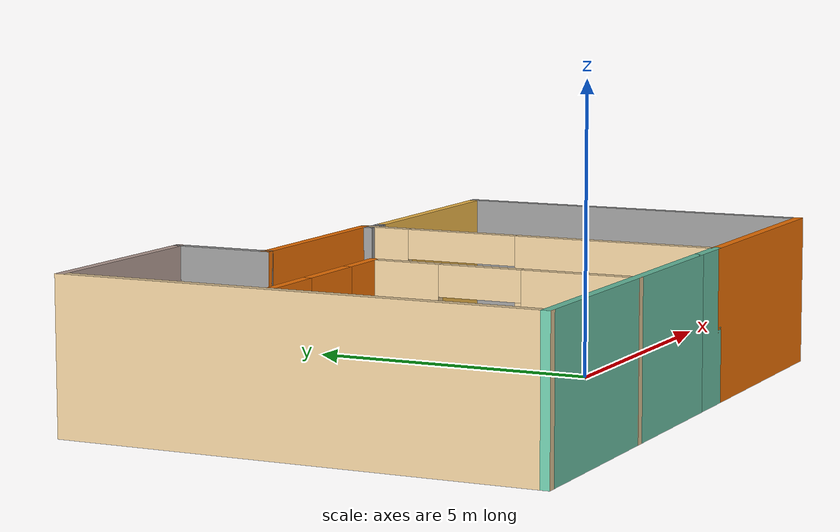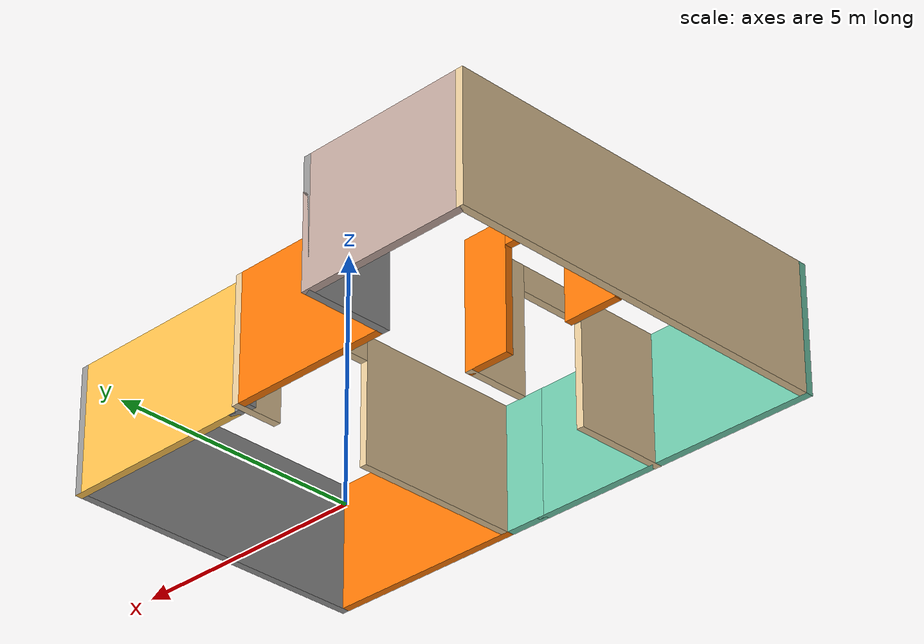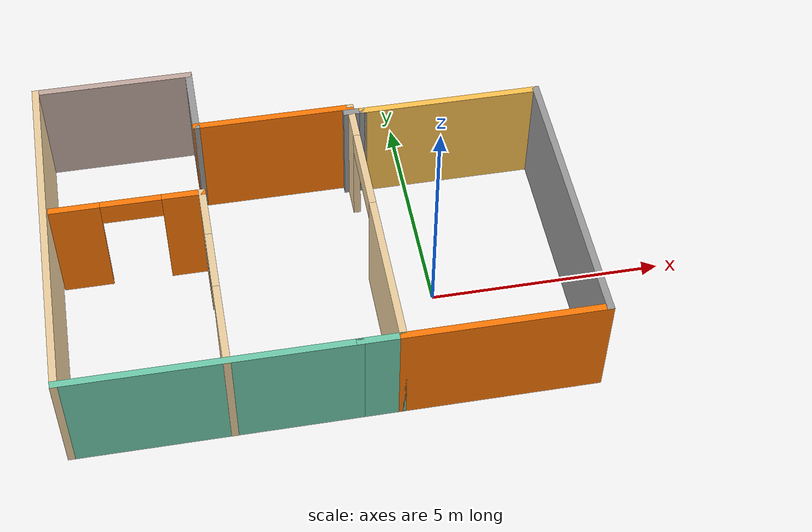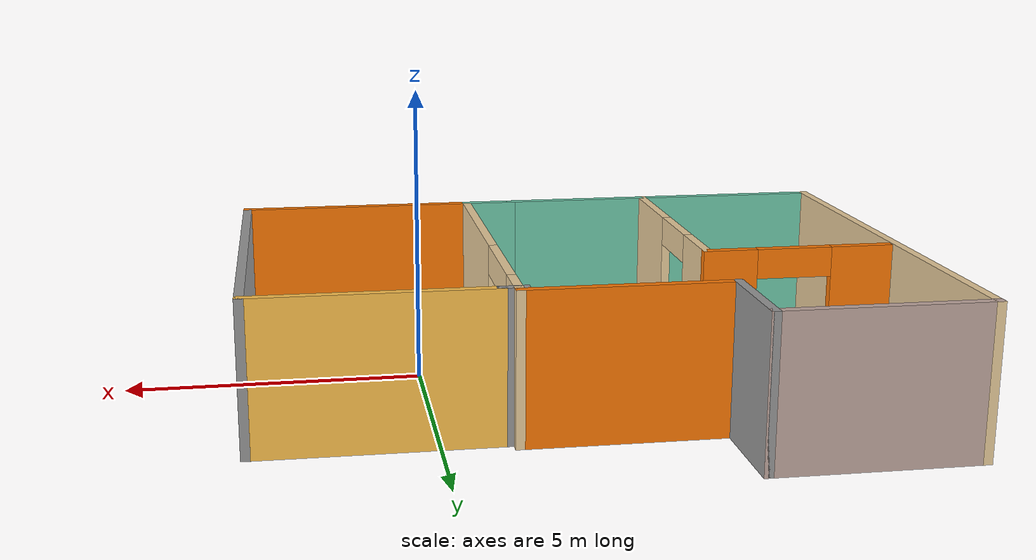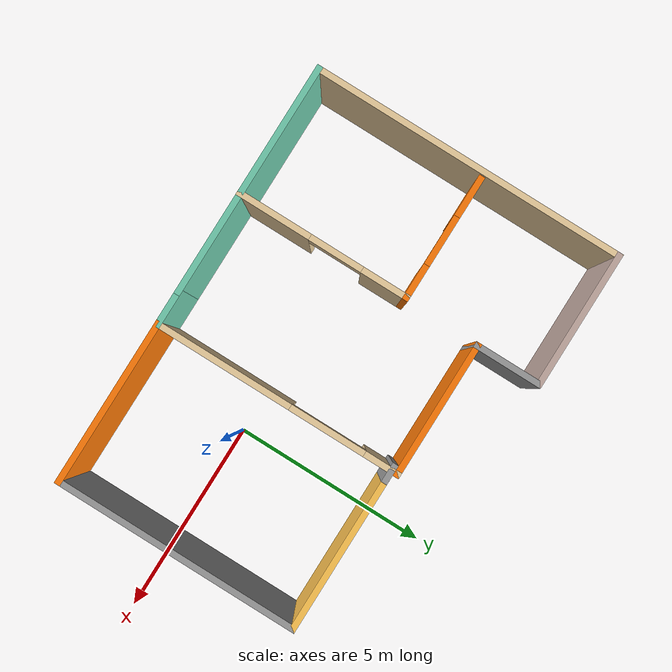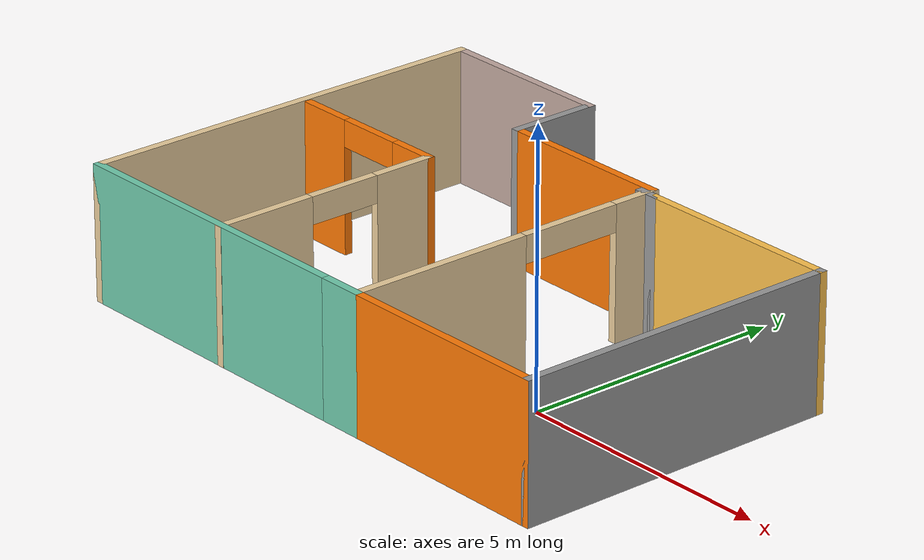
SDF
<?xml version='1.0'?>
<sdf version='1.6'>
  <model name='building1'>
    <pose frame=''>-2.48886 1.20939 0 0 -0 0</pose>
    <link name='Wall_1'>
      <collision name='Wall_1_Collision'>
        <geometry>
          <box>
            <size>6 0.15 2.5</size>
          </box>
        </geometry>
        <pose frame=''>0 0 1.25 0 -0 0</pose>
      </collision>
      <visual name='Wall_1_Visual'>
        <pose frame=''>0 0 1.25 0 -0 0</pose>
        <geometry>
          <box>
            <size>6 0.15 2.5</size>
          </box>
        </geometry>
        <material>
          <script>
            <uri>file://media/materials/scripts/gazebo.material</uri>
            <name>Gazebo/Grey</name>
          </script>
          <ambient>0.435294 0.796078 0.67451 1</ambient>
        </material>
        <meta>
          <layer>0</layer>
        </meta>
      </visual>
      <pose frame=''>-2.475 -3.92334 0 0 -0 3.14159</pose>
    </link>
    <link name='Wall_10'>
      <collision name='Wall_10_Collision'>
        <geometry>
          <box>
            <size>3.5 0.15 2.5</size>
          </box>
        </geometry>
        <pose frame=''>0 0 1.25 0 -0 0</pose>
      </collision>
      <visual name='Wall_10_Visual'>
        <pose frame=''>0 0 1.25 0 -0 0</pose>
        <geometry>
          <box>
            <size>3.5 0.15 2.5</size>
          </box>
        </geometry>
        <material>
          <script>
            <uri>file://media/materials/scripts/gazebo.material</uri>
            <name>Gazebo/Grey</name>
          </script>
          <ambient>0.996078 0.47451 0.0196078 1</ambient>
        </material>
        <meta>
          <layer>0</layer>
        </meta>
      </visual>
      <pose frame=''>-0.375 2.32666 0 0 -0 0</pose>
    </link>
    <link name='Wall_11'>
      <pose frame=''>1.3 -0.723336 0 0 0 -1.5708</pose>
      <visual name='Wall_11_Visual_0'>
        <pose frame=''>-2.65935 0 1.25 0 -0 0</pose>
        <geometry>
          <box>
            <size>0.931308 0.15 2.5</size>
          </box>
        </geometry>
        <material>
          <script>
            <uri>file://media/materials/scripts/gazebo.material</uri>
            <name>Gazebo/Grey</name>
          </script>
          <ambient>0.921569 0.807843 0.615686 1</ambient>
        </material>
        <meta>
          <layer>0</layer>
        </meta>
      </visual>
      <collision name='Wall_11_Collision_0'>
        <geometry>
          <box>
            <size>0.931308 0.15 2.5</size>
          </box>
        </geometry>
        <pose frame=''>-2.65935 0 1.25 0 -0 0</pose>
      </collision>
      <visual name='Wall_11_Visual_1'>
        <pose frame=''>1.43569 0 1.25 0 -0 0</pose>
        <geometry>
          <box>
            <size>3.37862 0.15 2.5</size>
          </box>
        </geometry>
        <material>
          <script>
            <uri>file://media/materials/scripts/gazebo.material</uri>
            <name>Gazebo/Grey</name>
          </script>
          <ambient>0.921569 0.807843 0.615686 1</ambient>
        </material>
        <meta>
          <layer>0</layer>
        </meta>
      </visual>
      <collision name='Wall_11_Collision_1'>
        <geometry>
          <box>
            <size>3.37862 0.15 2.5</size>
          </box>
        </geometry>
        <pose frame=''>1.43569 0 1.25 0 -0 0</pose>
      </collision>
      <visual name='Wall_11_Visual_2'>
        <pose frame=''>-1.22366 0 2.25 0 -0 0</pose>
        <geometry>
          <box>
            <size>1.94007 0.15 0.5</size>
          </box>
        </geometry>
        <material>
          <script>
            <uri>file://media/materials/scripts/gazebo.material</uri>
            <name>Gazebo/Grey</name>
          </script>
          <ambient>0.921569 0.807843 0.615686 1</ambient>
        </material>
        <meta>
          <layer>0</layer>
        </meta>
      </visual>
      <collision name='Wall_11_Collision_2'>
        <geometry>
          <box>
            <size>1.94007 0.15 0.5</size>
          </box>
        </geometry>
        <pose frame=''>-1.22366 0 2.25 0 -0 0</pose>
      </collision>
    </link>
    <link name='Wall_13'>
      <collision name='Wall_13_Collision'>
        <geometry>
          <box>
            <size>1 0.15 2.5</size>
          </box>
        </geometry>
        <pose frame=''>0 0 1.25 0 -0 0</pose>
      </collision>
      <visual name='Wall_13_Visual'>
        <pose frame=''>0 0 1.25 0 -0 0</pose>
        <geometry>
          <box>
            <size>1 0.15 2.5</size>
          </box>
        </geometry>
        <material>
          <script>
            <uri>file://media/materials/scripts/gazebo.material</uri>
            <name>Gazebo/Grey</name>
          </script>
          <ambient>0.435294 0.796078 0.67451 1</ambient>
        </material>
        <meta>
          <layer>0</layer>
        </meta>
      </visual>
      <pose frame=''>0.875 -3.92334 0 0 -0 0</pose>
    </link>
    <link name='Wall_15'>
      <collision name='Wall_15_Collision'>
        <geometry>
          <box>
            <size>4.25 0.15 2.5</size>
          </box>
        </geometry>
        <pose frame=''>0 0 1.25 0 -0 0</pose>
      </collision>
      <visual name='Wall_15_Visual'>
        <pose frame=''>0 0 1.25 0 -0 0</pose>
        <geometry>
          <box>
            <size>4.25 0.15 2.5</size>
          </box>
        </geometry>
        <material>
          <script>
            <uri>file://media/materials/scripts/gazebo.material</uri>
            <name>Gazebo/Grey</name>
          </script>
          <ambient>0.996078 0.47451 0.0196078 1</ambient>
        </material>
        <meta>
          <layer>0</layer>
        </meta>
      </visual>
      <pose frame=''>3.35 -3.92334 0 0 -0 0</pose>
    </link>
    <link name='Wall_16'>
      <collision name='Wall_16_Collision'>
        <geometry>
          <box>
            <size>6.25 0.15 2.5</size>
          </box>
        </geometry>
        <pose frame=''>0 0 1.25 0 -0 0</pose>
      </collision>
      <visual name='Wall_16_Visual'>
        <pose frame=''>0 0 1.25 0 -0 0</pose>
        <geometry>
          <box>
            <size>6.25 0.15 2.5</size>
          </box>
        </geometry>
        <material>
          <script>
            <uri>file://media/materials/scripts/gazebo.material</uri>
            <name>Gazebo/Grey</name>
          </script>
          <ambient>1 1 1 1</ambient>
        </material>
        <meta>
          <layer>0</layer>
        </meta>
      </visual>
      <pose frame=''>5.4 -0.873336 0 0 -0 1.5708</pose>
    </link>
    <link name='Wall_17'>
      <collision name='Wall_17_Collision'>
        <geometry>
          <box>
            <size>4 0.15 2.5</size>
          </box>
        </geometry>
        <pose frame=''>0 0 1.25 0 -0 0</pose>
      </collision>
      <visual name='Wall_17_Visual'>
        <pose frame=''>0 0 1.25 0 -0 0</pose>
        <geometry>
          <box>
            <size>4 0.15 2.5</size>
          </box>
        </geometry>
        <material>
          <script>
            <uri>file://media/materials/scripts/gazebo.material</uri>
            <name>Gazebo/Grey</name>
          </script>
          <ambient>1 0.764706 0.305882 1</ambient>
        </material>
        <meta>
          <layer>0</layer>
        </meta>
      </visual>
      <pose frame=''>3.475 2.17666 0 0 -0 3.14159</pose>
    </link>
    <link name='Wall_18'>
      <collision name='Wall_18_Collision'>
        <geometry>
          <box>
            <size>0.15 0.15 2.5</size>
          </box>
        </geometry>
        <pose frame=''>0 0 1.25 0 -0 0</pose>
      </collision>
      <visual name='Wall_18_Visual'>
        <pose frame=''>0 0 1.25 0 -0 0</pose>
        <geometry>
          <box>
            <size>0.15 0.15 2.5</size>
          </box>
        </geometry>
        <material>
          <script>
            <uri>file://media/materials/scripts/gazebo.material</uri>
            <name>Gazebo/Grey</name>
          </script>
          <ambient>1 1 1 1</ambient>
        </material>
        <meta>
          <layer>0</layer>
        </meta>
      </visual>
      <pose frame=''>1.55 2.17666 0 0 -0 0</pose>
    </link>
    <link name='Wall_19'>
      <collision name='Wall_19_Collision'>
        <geometry>
          <box>
            <size>0.5 0.15 2.5</size>
          </box>
        </geometry>
        <pose frame=''>0 0 1.25 0 -0 0</pose>
      </collision>
      <visual name='Wall_19_Visual'>
        <pose frame=''>0 0 1.25 0 -0 0</pose>
        <geometry>
          <box>
            <size>0.5 0.15 2.5</size>
          </box>
        </geometry>
        <material>
          <script>
            <uri>file://media/materials/scripts/gazebo.material</uri>
            <name>Gazebo/Grey</name>
          </script>
          <ambient>1 1 1 1</ambient>
        </material>
        <meta>
          <layer>0</layer>
        </meta>
      </visual>
      <pose frame=''>1.375 2.17666 0 0 -0 3.14159</pose>
    </link>
    <link name='Wall_3'>
      <collision name='Wall_3_Collision'>
        <geometry>
          <box>
            <size>8 0.15 2.5</size>
          </box>
        </geometry>
        <pose frame=''>0 0 1.25 0 -0 0</pose>
      </collision>
      <visual name='Wall_3_Visual'>
        <pose frame=''>0 0 1.25 0 -0 0</pose>
        <geometry>
          <box>
            <size>8 0.15 2.5</size>
          </box>
        </geometry>
        <material>
          <script>
            <uri>file://media/materials/scripts/gazebo.material</uri>
            <name>Gazebo/Grey</name>
          </script>
          <ambient>0.921569 0.807843 0.615686 1</ambient>
        </material>
        <meta>
          <layer>0</layer>
        </meta>
      </visual>
      <pose frame=''>-5.4 0.001664 0 0 -0 1.5708</pose>
    </link>
    <link name='Wall_5'>
      <pose frame=''>-2.12389 -1.75167 0 0 -0 1.5708</pose>
      <visual name='Wall_5_Visual_0'>
        <pose frame=''>-1.29797 0 1.25 0 -0 0</pose>
        <geometry>
          <box>
            <size>1.90406 0.15 2.5</size>
          </box>
        </geometry>
        <material>
          <script>
            <uri>file://media/materials/scripts/gazebo.material</uri>
            <name>Gazebo/Grey</name>
          </script>
          <ambient>0.921569 0.807843 0.615686 1</ambient>
        </material>
        <meta>
          <layer>0</layer>
        </meta>
      </visual>
      <collision name='Wall_5_Collision_0'>
        <geometry>
          <box>
            <size>1.90406 0.15 2.5</size>
          </box>
        </geometry>
        <pose frame=''>-1.29797 0 1.25 0 -0 0</pose>
      </collision>
      <visual name='Wall_5_Visual_1'>
        <pose frame=''>1.63333 0 1.25 0 -0 0</pose>
        <geometry>
          <box>
            <size>1.23333 0.15 2.5</size>
          </box>
        </geometry>
        <material>
          <script>
            <uri>file://media/materials/scripts/gazebo.material</uri>
            <name>Gazebo/Grey</name>
          </script>
          <ambient>0.921569 0.807843 0.615686 1</ambient>
        </material>
        <meta>
          <layer>0</layer>
        </meta>
      </visual>
      <collision name='Wall_5_Collision_1'>
        <geometry>
          <box>
            <size>1.23333 0.15 2.5</size>
          </box>
        </geometry>
        <pose frame=''>1.63333 0 1.25 0 -0 0</pose>
      </collision>
      <visual name='Wall_5_Visual_2'>
        <pose frame=''>0.335363 0 2.25 0 -0 0</pose>
        <geometry>
          <box>
            <size>1.36261 0.15 0.5</size>
          </box>
        </geometry>
        <material>
          <script>
            <uri>file://media/materials/scripts/gazebo.material</uri>
            <name>Gazebo/Grey</name>
          </script>
          <ambient>0.921569 0.807843 0.615686 1</ambient>
        </material>
        <meta>
          <layer>0</layer>
        </meta>
      </visual>
      <collision name='Wall_5_Collision_2'>
        <geometry>
          <box>
            <size>1.36261 0.15 0.5</size>
          </box>
        </geometry>
        <pose frame=''>0.335363 0 2.25 0 -0 0</pose>
      </collision>
    </link>
    <link name='Wall_6'>
      <pose frame=''>-3.67389 0.423335 0 0 -0 3.14159</pose>
      <visual name='Wall_6_Visual_0'>
        <pose frame=''>-1.16562 0 1.25 0 -0 0</pose>
        <geometry>
          <box>
            <size>0.918749 0.15 2.5</size>
          </box>
        </geometry>
        <material>
          <script>
            <uri>file://media/materials/scripts/gazebo.material</uri>
            <name>Gazebo/Grey</name>
          </script>
          <ambient>0.996078 0.47451 0.0196078 1</ambient>
        </material>
        <meta>
          <layer>0</layer>
        </meta>
      </visual>
      <collision name='Wall_6_Collision_0'>
        <geometry>
          <box>
            <size>0.918749 0.15 2.5</size>
          </box>
        </geometry>
        <pose frame=''>-1.16562 0 1.25 0 -0 0</pose>
      </collision>
      <visual name='Wall_6_Visual_1'>
        <pose frame=''>1.09442 0 1.25 0 -0 0</pose>
        <geometry>
          <box>
            <size>1.06116 0.15 2.5</size>
          </box>
        </geometry>
        <material>
          <script>
            <uri>file://media/materials/scripts/gazebo.material</uri>
            <name>Gazebo/Grey</name>
          </script>
          <ambient>0.996078 0.47451 0.0196078 1</ambient>
        </material>
        <meta>
          <layer>0</layer>
        </meta>
      </visual>
      <collision name='Wall_6_Collision_1'>
        <geometry>
          <box>
            <size>1.06116 0.15 2.5</size>
          </box>
        </geometry>
        <pose frame=''>1.09442 0 1.25 0 -0 0</pose>
      </collision>
      <visual name='Wall_6_Visual_2'>
        <pose frame=''>-0.071206 0 2.25 0 -0 0</pose>
        <geometry>
          <box>
            <size>1.27009 0.15 0.5</size>
          </box>
        </geometry>
        <material>
          <script>
            <uri>file://media/materials/scripts/gazebo.material</uri>
            <name>Gazebo/Grey</name>
          </script>
          <ambient>0.996078 0.47451 0.0196078 1</ambient>
        </material>
        <meta>
          <layer>0</layer>
        </meta>
      </visual>
      <collision name='Wall_6_Collision_2'>
        <geometry>
          <box>
            <size>1.27009 0.15 0.5</size>
          </box>
        </geometry>
        <pose frame=''>-0.071206 0 2.25 0 -0 0</pose>
      </collision>
    </link>
    <link name='Wall_8'>
      <collision name='Wall_8_Collision'>
        <geometry>
          <box>
            <size>3.5 0.15 2.5</size>
          </box>
        </geometry>
        <pose frame=''>0 0 1.25 0 -0 0</pose>
      </collision>
      <visual name='Wall_8_Visual'>
        <pose frame=''>0 0 1.25 0 -0 0</pose>
        <geometry>
          <box>
            <size>3.5 0.15 2.5</size>
          </box>
        </geometry>
        <material>
          <script>
            <uri>file://media/materials/scripts/gazebo.material</uri>
            <name>Gazebo/Grey</name>
          </script>
          <ambient>0.760784 0.662745 0.627451 1</ambient>
        </material>
        <meta>
          <layer>0</layer>
        </meta>
      </visual>
      <pose frame=''>-3.725 3.92666 0 0 -0 0</pose>
    </link>
    <link name='Wall_9'>
      <collision name='Wall_9_Collision'>
        <geometry>
          <box>
            <size>1.75 0.15 2.5</size>
          </box>
        </geometry>
        <pose frame=''>0 0 1.25 0 -0 0</pose>
      </collision>
      <visual name='Wall_9_Visual'>
        <pose frame=''>0 0 1.25 0 -0 0</pose>
        <geometry>
          <box>
            <size>1.75 0.15 2.5</size>
          </box>
        </geometry>
        <material>
          <script>
            <uri>file://media/materials/scripts/gazebo.material</uri>
            <name>Gazebo/Grey</name>
          </script>
          <ambient>1 1 1 1</ambient>
        </material>
        <meta>
          <layer>0</layer>
        </meta>
      </visual>
      <pose frame=''>-2.05 3.12666 0 0 0 -1.5708</pose>
    </link>
    <static>1</static>
  </model>
</sdf>
